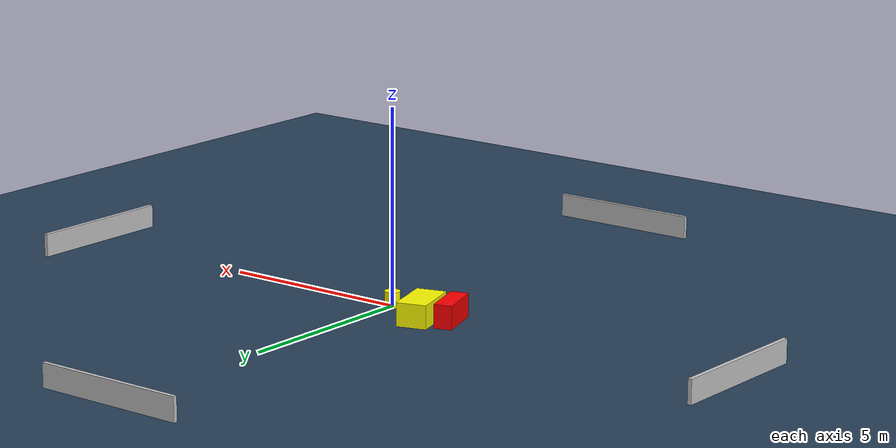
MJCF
<?xml version="1.0" ?>
<mujoco model="generated_environment">
  <option timestep="0.01" integrator="RK4" cone="elliptic"/>
  <default>
    <geom density="1"/>
  </default>
  <asset>
    <texture builtin="gradient" height="3072" name="skybox" rgb1="0.3 0.5 0.7" rgb2="0 0 0" type="skybox" width="512"/>
    <texture builtin="checker" height="300" name="groundplane" rgb1="0.2 0.3 0.4" rgb2="0.1 0.2 0.3" type="2d" width="300"/>
    <material name="groundplane" reflectance="0.2" texrepeat="5 5" texture="groundplane"/>
  </asset>
  <worldbody>
    <light dir="0 0 -1" directional="true" pos="0 0 1.5"/>
    <geom condim="3" friction="0.5 0.005 0.001" material="groundplane" name="floor" pos="0 0 0" size="0 0 0.05" type="plane"/>
    <body name="walls">
      <geom name="wall_1" condim="4" pos="-10.0 0.0 0.3" rgba="0.800000011920929 0.800000011920929 0.800000011920929 1.0" size="0.05 2.0 0.3" type="box"/>
      <geom name="wall_2" condim="4" pos="10.0 0.0 0.3" rgba="0.800000011920929 0.800000011920929 0.800000011920929 1.0" size="0.05 2.0 0.3" type="box"/>
      <geom name="wall_3" condim="4" pos="0.0 -10.0 0.3" rgba="0.800000011920929 0.800000011920929 0.800000011920929 1.0" size="2.0 0.05 0.3" type="box"/>
      <geom name="wall_4" condim="4" pos="0.0 10.0 0.3" rgba="0.800000011920929 0.800000011920929 0.800000011920929 1.0" size="2.0 0.05 0.3" type="box"/>
    </body>
    <body name="robot">
      <joint name="joint_x" type="slide" pos="0 0 0" axis="1 0 0"/>
      <joint name="joint_y" type="slide" pos="0 0 0" axis="0 1 0"/>
      <geom name="robot" type="cylinder" pos="0.0 0.0 0.2" size="0.2 0.2 0.0" mass="5.0" friction="1.0 0.005 0.0001" condim="4" rgba="1.0 1.0 0.0 1.0"/>
    </body>
    <body name="obstacle_1_movable">
      <geom name="obstacle_1_movable" condim="4" pos="-1.3278488421025911 0.5354438898044205 0.3" euler="0 0 106.69773865291683" friction="0.0 0.005 0.001" rgba="1.0 1.0 0.0 1.0" size="0.684007773874955 0.3839955806836419 0.3" type="box" mass="0.1"/>
      <joint type="free"/>
    </body>
    <body name="obstacle_2_static">
      <geom name="obstacle_2_static" condim="4" pos="-1.987648272128615 0.21398988665343407 0.3" euler="0 0 288.13417558477664" friction="0.0 0.005 0.001" rgba="1.0 0.0 0.0 1.0" size="0.614240344276662 0.231348719184447 0.3" type="box"/>
    </body>
  </worldbody>
  <actuator>
    <motor name="actuator_x" joint="joint_x" gear="1" ctrlrange="-1 1"/>
    <motor name="actuator_y" joint="joint_y" gear="1" ctrlrange="-1 1"/>
  </actuator>
</mujoco>
